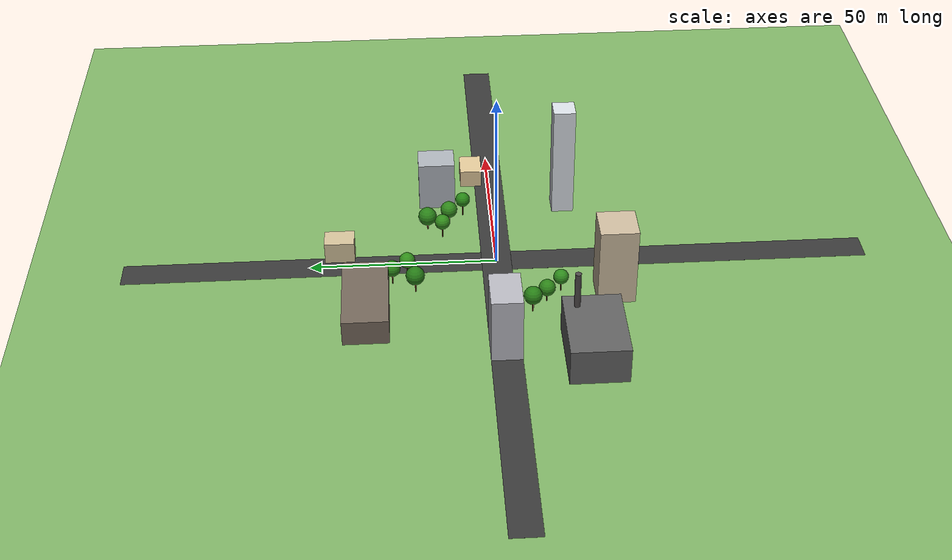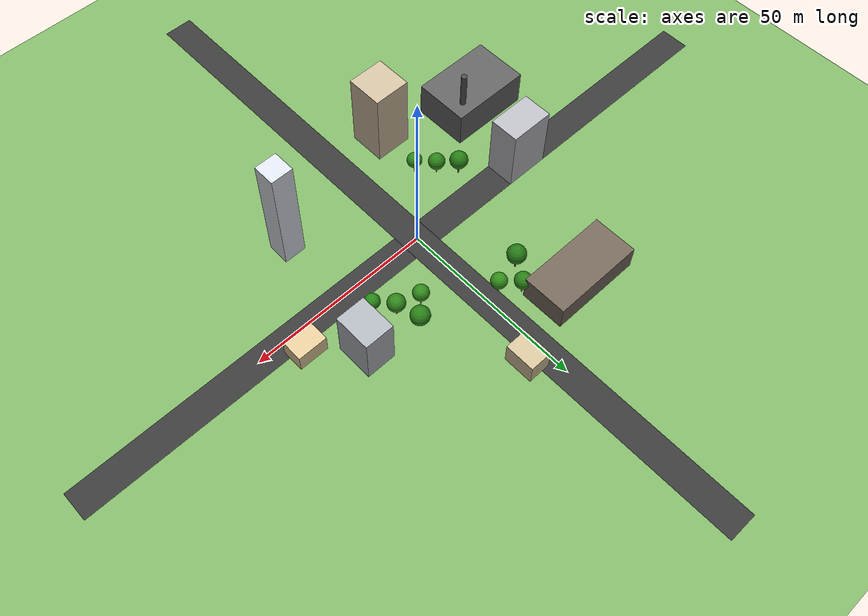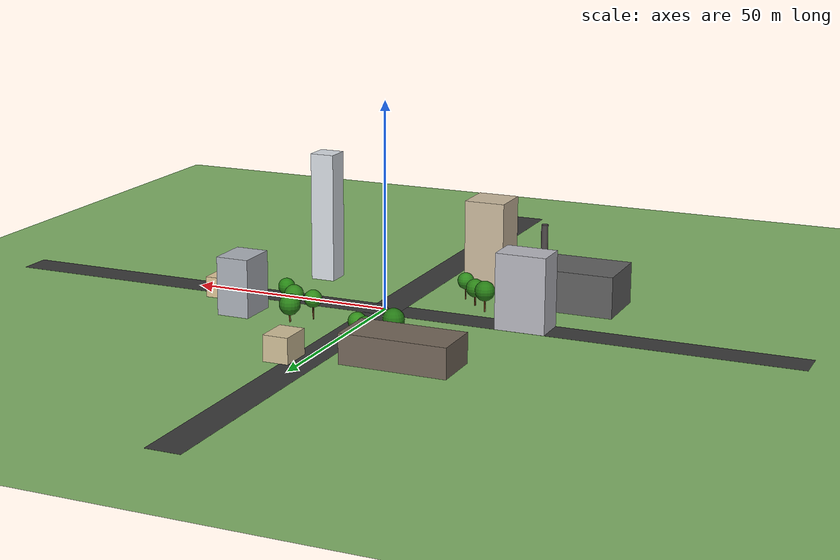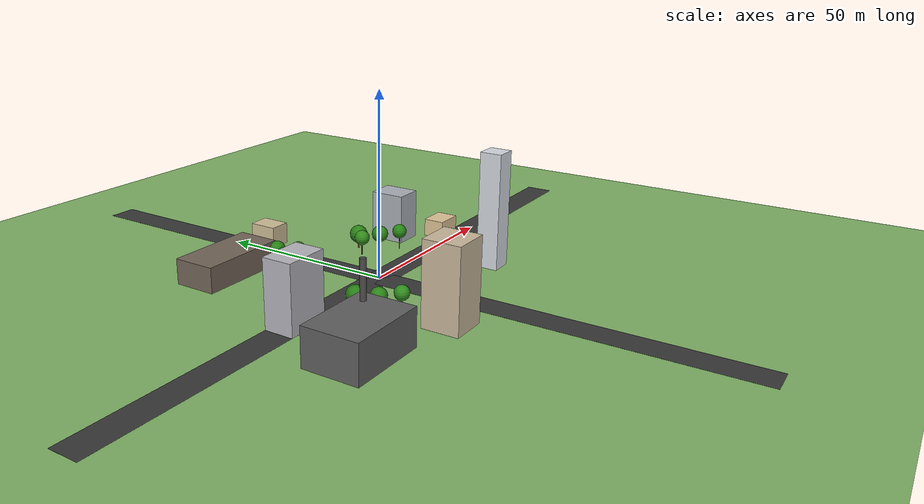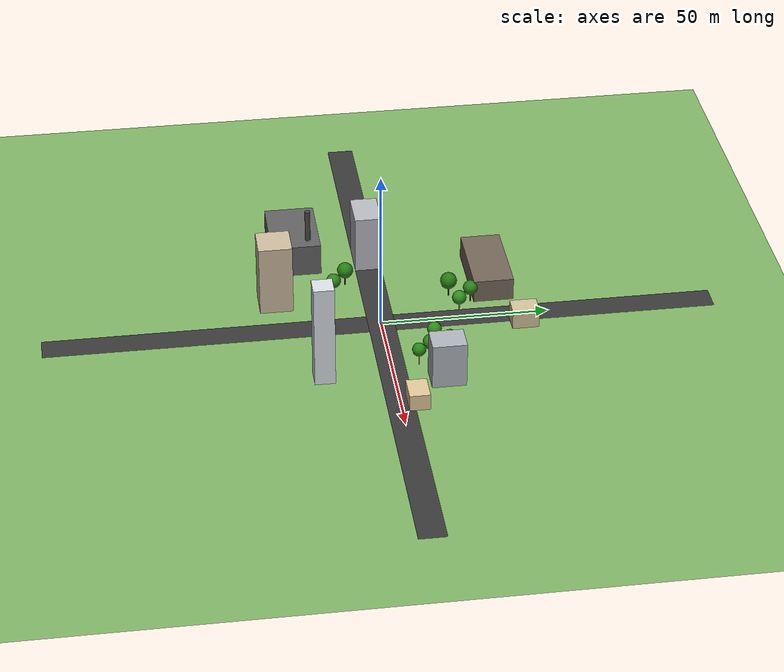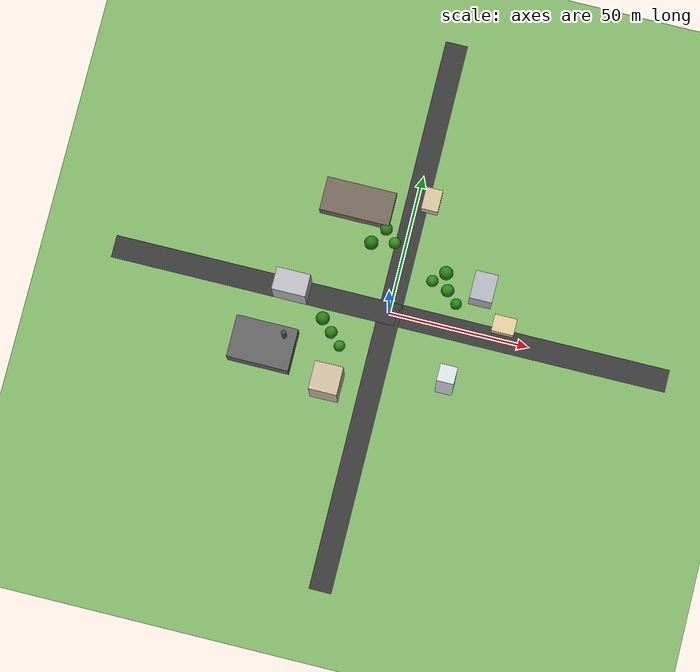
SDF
<?xml version="1.0" ?>
<sdf version="1.6">
  <world name="machinima_world">

    <physics name="4ms" type="ignored">
      <max_step_size>0.004</max_step_size>
      <real_time_factor>1.0</real_time_factor>
    </physics>

    <plugin filename="gz-sim-physics-system"
            name="gz::sim::systems::Physics"/>
    <plugin filename="gz-sim-scene-broadcaster-system"
            name="gz::sim::systems::SceneBroadcaster"/>
    <plugin filename="gz-sim-user-commands-system"
            name="gz::sim::systems::UserCommands"/>
    <plugin filename="gz-sim-sensors-system"
            name="gz::sim::systems::Sensors">
      <render_engine>ogre2</render_engine>
    </plugin>

    <light type="directional" name="sun">
      <cast_shadows>true</cast_shadows>
      <pose>0 0 10 0 0 0</pose>
      <diffuse>0.8 0.8 0.8 1</diffuse>
      <specular>0.2 0.2 0.2 1</specular>
      <attenuation>
        <range>1000</range>
        <constant>0.9</constant>
        <linear>0.01</linear>
        <quadratic>0.001</quadratic>
      </attenuation>
      <direction>-0.5 0.1 -0.9</direction>
    </light>

    <!-- Ground -->
    <model name="ground_plane">
      <static>true</static>
      <link name="link">
        <collision name="collision">
          <geometry>
            <plane><normal>0 0 1</normal><size>400 400</size></plane>
          </geometry>
        </collision>
        <visual name="visual">
          <geometry>
            <plane><normal>0 0 1</normal><size>400 400</size></plane>
          </geometry>
          <material>
            <ambient>0.5 0.7 0.4 1</ambient>
            <diffuse>0.5 0.7 0.4 1</diffuse>
          </material>
        </visual>
      </link>
    </model>

    <!-- (physics X3 removed: machinima scene is fully puppeted) -->

    <!-- Ambient fill light from opposite direction -->
    <light type="directional" name="sky_fill">
      <cast_shadows>false</cast_shadows>
      <pose>0 0 50 0 0 0</pose>
      <diffuse>0.4 0.45 0.5 1</diffuse>
      <specular>0.0 0.0 0.0 1</specular>
      <direction>0.3 -0.1 -1</direction>
    </light>

    <!-- ── Roads ─────────────────────────────────────────────────────── -->
    <model name="road_ns">
      <static>true</static>
      <pose>0 0 0.005 0 0 0</pose>
      <link name="link">
        <visual name="vis">
          <geometry><box><size>8 200 0.01</size></box></geometry>
          <material>
            <ambient>0.22 0.22 0.22 1</ambient>
            <diffuse>0.22 0.22 0.22 1</diffuse>
          </material>
        </visual>
      </link>
    </model>

    <model name="road_ew">
      <static>true</static>
      <pose>0 0 0.005 0 0 0</pose>
      <link name="link">
        <visual name="vis">
          <geometry><box><size>200 8 0.01</size></box></geometry>
          <material>
            <ambient>0.22 0.22 0.22 1</ambient>
            <diffuse>0.22 0.22 0.22 1</diffuse>
          </material>
        </visual>
      </link>
    </model>

    <!-- ── Buildings ─────────────────────────────────────────────────── -->

    <!-- Office block A  (12 × 8 × 18 m) -->
    <model name="building_office_a">
      <static>true</static>
      <pose>-35 0 9 0 0 0</pose>
      <link name="link">
        <collision name="col"><geometry><box><size>12 8 18</size></box></geometry></collision>
        <visual name="vis">
          <geometry><box><size>12 8 18</size></box></geometry>
          <material>
            <ambient>0.72 0.72 0.75 1</ambient>
            <diffuse>0.72 0.72 0.75 1</diffuse>
            <specular>0.2 0.2 0.2 1</specular>
          </material>
        </visual>
      </link>
    </model>

    <!-- Office block B  (8 × 10 × 14 m) -->
    <model name="building_office_b">
      <static>true</static>
      <pose>30 15 7 0 0 0</pose>
      <link name="link">
        <collision name="col"><geometry><box><size>8 10 14</size></box></geometry></collision>
        <visual name="vis">
          <geometry><box><size>8 10 14</size></box></geometry>
          <material>
            <ambient>0.68 0.70 0.73 1</ambient>
            <diffuse>0.68 0.70 0.73 1</diffuse>
            <specular>0.3 0.3 0.3 1</specular>
          </material>
        </visual>
      </link>
    </model>

    <!-- Tower  (6 × 6 × 32 m) — tallest landmark -->
    <model name="building_tower">
      <static>true</static>
      <pose>25 -20 16 0 0 0</pose>
      <link name="link">
        <collision name="col"><geometry><box><size>6 6 32</size></box></geometry></collision>
        <visual name="vis">
          <geometry><box><size>6 6 32</size></box></geometry>
          <material>
            <ambient>0.85 0.87 0.90 1</ambient>
            <diffuse>0.85 0.87 0.90 1</diffuse>
            <specular>0.5 0.5 0.5 1</specular>
          </material>
        </visual>
      </link>
    </model>

    <!-- Warehouse  (25 × 12 × 7 m) -->
    <model name="building_warehouse">
      <static>true</static>
      <pose>-20 35 3.5 0 0 0</pose>
      <link name="link">
        <collision name="col"><geometry><box><size>25 12 7</size></box></geometry></collision>
        <visual name="vis">
          <geometry><box><size>25 12 7</size></box></geometry>
          <material>
            <ambient>0.45 0.40 0.35 1</ambient>
            <diffuse>0.45 0.40 0.35 1</diffuse>
          </material>
        </visual>
      </link>
    </model>

    <!-- Apartment block  (10 × 10 × 22 m) -->
    <model name="building_apartment">
      <static>true</static>
      <pose>-15 -30 11 0 0 0</pose>
      <link name="link">
        <collision name="col"><geometry><box><size>10 10 22</size></box></geometry></collision>
        <visual name="vis">
          <geometry><box><size>10 10 22</size></box></geometry>
          <material>
            <ambient>0.80 0.73 0.62 1</ambient>
            <diffuse>0.80 0.73 0.62 1</diffuse>
          </material>
        </visual>
      </link>
    </model>

    <!-- Small shop A  (8 × 6 × 5 m) -->
    <model name="building_shop_a">
      <static>true</static>
      <pose>40 5 2.5 0 0 0</pose>
      <link name="link">
        <collision name="col"><geometry><box><size>8 6 5</size></box></geometry></collision>
        <visual name="vis">
          <geometry><box><size>8 6 5</size></box></geometry>
          <material>
            <ambient>0.88 0.78 0.60 1</ambient>
            <diffuse>0.88 0.78 0.60 1</diffuse>
          </material>
        </visual>
      </link>
    </model>

    <!-- Small shop B  (6 × 8 × 6 m) -->
    <model name="building_shop_b">
      <static>true</static>
      <pose>5 42 3 0 0 0</pose>
      <link name="link">
        <collision name="col"><geometry><box><size>6 8 6</size></box></geometry></collision>
        <visual name="vis">
          <geometry><box><size>6 8 6</size></box></geometry>
          <material>
            <ambient>0.82 0.75 0.60 1</ambient>
            <diffuse>0.82 0.75 0.60 1</diffuse>
          </material>
        </visual>
      </link>
    </model>

    <!-- Factory  (22 × 15 × 10 m) -->
    <model name="building_factory">
      <static>true</static>
      <pose>-40 -22 5 0 0 0</pose>
      <link name="link">
        <collision name="col"><geometry><box><size>22 15 10</size></box></geometry></collision>
        <visual name="vis">
          <geometry><box><size>22 15 10</size></box></geometry>
          <material>
            <ambient>0.38 0.38 0.38 1</ambient>
            <diffuse>0.38 0.38 0.38 1</diffuse>
          </material>
        </visual>
      </link>
    </model>

    <!-- Factory chimney -->
    <model name="building_chimney">
      <static>true</static>
      <pose>-33 -18 10 0 0 0</pose>
      <link name="link">
        <collision name="col"><geometry><cylinder><radius>0.8</radius><length>20</length></cylinder></geometry></collision>
        <visual name="vis">
          <geometry><cylinder><radius>0.8</radius><length>20</length></cylinder></geometry>
          <material>
            <ambient>0.30 0.28 0.28 1</ambient>
            <diffuse>0.30 0.28 0.28 1</diffuse>
          </material>
        </visual>
      </link>
    </model>

    <!-- Cluster 1 — north-east -->
    <model name="tree_1"><static>true</static><pose>18 12 0 0 0 0</pose><link name="link">
      <visual name="trunk"><pose>0 0 1.5 0 0 0</pose><geometry><cylinder><radius>0.18</radius><length>3</length></cylinder></geometry><material><ambient>0.35 0.20 0.05 1</ambient><diffuse>0.35 0.20 0.05 1</diffuse></material></visual>
      <visual name="crown"><pose>0 0 4.8 0 0 0</pose><geometry><sphere><radius>2.3</radius></sphere></geometry><material><ambient>0.13 0.48 0.10 1</ambient><diffuse>0.18 0.52 0.10 1</diffuse></material></visual>
      <collision name="col"><pose>0 0 1.5 0 0 0</pose><geometry><cylinder><radius>0.18</radius><length>3</length></cylinder></geometry></collision>
    </link></model>

    <model name="tree_2"><static>true</static><pose>22 8 0 0 0 0</pose><link name="link">
      <visual name="trunk"><pose>0 0 1.8 0 0 0</pose><geometry><cylinder><radius>0.15</radius><length>3.6</length></cylinder></geometry><material><ambient>0.35 0.20 0.05 1</ambient><diffuse>0.35 0.20 0.05 1</diffuse></material></visual>
      <visual name="crown"><pose>0 0 5.2 0 0 0</pose><geometry><sphere><radius>2.0</radius></sphere></geometry><material><ambient>0.15 0.52 0.08 1</ambient><diffuse>0.15 0.52 0.08 1</diffuse></material></visual>
      <collision name="col"><pose>0 0 1.8 0 0 0</pose><geometry><cylinder><radius>0.15</radius><length>3.6</length></cylinder></geometry></collision>
    </link></model>

    <model name="tree_3"><static>true</static><pose>16 18 0 0 0 0</pose><link name="link">
      <visual name="trunk"><pose>0 0 1.3 0 0 0</pose><geometry><cylinder><radius>0.20</radius><length>2.6</length></cylinder></geometry><material><ambient>0.35 0.20 0.05 1</ambient><diffuse>0.35 0.20 0.05 1</diffuse></material></visual>
      <visual name="crown"><pose>0 0 4.2 0 0 0</pose><geometry><sphere><radius>2.5</radius></sphere></geometry><material><ambient>0.12 0.45 0.09 1</ambient><diffuse>0.16 0.50 0.09 1</diffuse></material></visual>
      <collision name="col"><pose>0 0 1.3 0 0 0</pose><geometry><cylinder><radius>0.20</radius><length>2.6</length></cylinder></geometry></collision>
    </link></model>

    <model name="tree_4"><static>true</static><pose>12 14 0 0 0 0</pose><link name="link">
      <visual name="trunk"><pose>0 0 1.6 0 0 0</pose><geometry><cylinder><radius>0.16</radius><length>3.2</length></cylinder></geometry><material><ambient>0.35 0.20 0.05 1</ambient><diffuse>0.35 0.20 0.05 1</diffuse></material></visual>
      <visual name="crown"><pose>0 0 5.0 0 0 0</pose><geometry><sphere><radius>2.1</radius></sphere></geometry><material><ambient>0.14 0.50 0.10 1</ambient><diffuse>0.19 0.54 0.10 1</diffuse></material></visual>
      <collision name="col"><pose>0 0 1.6 0 0 0</pose><geometry><cylinder><radius>0.16</radius><length>3.2</length></cylinder></geometry></collision>
    </link></model>

    <!-- Cluster 2 — south-west -->
    <model name="tree_5"><static>true</static><pose>-18 -12 0 0 0 0</pose><link name="link">
      <visual name="trunk"><pose>0 0 1.4 0 0 0</pose><geometry><cylinder><radius>0.17</radius><length>2.8</length></cylinder></geometry><material><ambient>0.35 0.20 0.05 1</ambient><diffuse>0.35 0.20 0.05 1</diffuse></material></visual>
      <visual name="crown"><pose>0 0 4.3 0 0 0</pose><geometry><sphere><radius>2.2</radius></sphere></geometry><material><ambient>0.13 0.47 0.09 1</ambient><diffuse>0.17 0.51 0.09 1</diffuse></material></visual>
      <collision name="col"><pose>0 0 1.4 0 0 0</pose><geometry><cylinder><radius>0.17</radius><length>2.8</length></cylinder></geometry></collision>
    </link></model>

    <model name="tree_6"><static>true</static><pose>-22 -8 0 0 0 0</pose><link name="link">
      <visual name="trunk"><pose>0 0 1.7 0 0 0</pose><geometry><cylinder><radius>0.19</radius><length>3.4</length></cylinder></geometry><material><ambient>0.35 0.20 0.05 1</ambient><diffuse>0.35 0.20 0.05 1</diffuse></material></visual>
      <visual name="crown"><pose>0 0 5.1 0 0 0</pose><geometry><sphere><radius>2.4</radius></sphere></geometry><material><ambient>0.11 0.44 0.08 1</ambient><diffuse>0.15 0.49 0.08 1</diffuse></material></visual>
      <collision name="col"><pose>0 0 1.7 0 0 0</pose><geometry><cylinder><radius>0.19</radius><length>3.4</length></cylinder></geometry></collision>
    </link></model>

    <model name="tree_7"><static>true</static><pose>-14 -16 0 0 0 0</pose><link name="link">
      <visual name="trunk"><pose>0 0 1.5 0 0 0</pose><geometry><cylinder><radius>0.15</radius><length>3.0</length></cylinder></geometry><material><ambient>0.35 0.20 0.05 1</ambient><diffuse>0.35 0.20 0.05 1</diffuse></material></visual>
      <visual name="crown"><pose>0 0 4.6 0 0 0</pose><geometry><sphere><radius>2.0</radius></sphere></geometry><material><ambient>0.14 0.50 0.11 1</ambient><diffuse>0.18 0.54 0.11 1</diffuse></material></visual>
      <collision name="col"><pose>0 0 1.5 0 0 0</pose><geometry><cylinder><radius>0.15</radius><length>3.0</length></cylinder></geometry></collision>
    </link></model>

    <!-- Cluster 3 — near warehouse, north -->
    <model name="tree_8"><static>true</static><pose>-8 28 0 0 0 0</pose><link name="link">
      <visual name="trunk"><pose>0 0 1.6 0 0 0</pose><geometry><cylinder><radius>0.18</radius><length>3.2</length></cylinder></geometry><material><ambient>0.35 0.20 0.05 1</ambient><diffuse>0.35 0.20 0.05 1</diffuse></material></visual>
      <visual name="crown"><pose>0 0 4.9 0 0 0</pose><geometry><sphere><radius>2.2</radius></sphere></geometry><material><ambient>0.12 0.46 0.09 1</ambient><diffuse>0.16 0.50 0.09 1</diffuse></material></visual>
      <collision name="col"><pose>0 0 1.6 0 0 0</pose><geometry><cylinder><radius>0.18</radius><length>3.2</length></cylinder></geometry></collision>
    </link></model>

    <model name="tree_9"><static>true</static><pose>-4 24 0 0 0 0</pose><link name="link">
      <visual name="trunk"><pose>0 0 1.4 0 0 0</pose><geometry><cylinder><radius>0.16</radius><length>2.8</length></cylinder></geometry><material><ambient>0.35 0.20 0.05 1</ambient><diffuse>0.35 0.20 0.05 1</diffuse></material></visual>
      <visual name="crown"><pose>0 0 4.4 0 0 0</pose><geometry><sphere><radius>2.1</radius></sphere></geometry><material><ambient>0.15 0.51 0.10 1</ambient><diffuse>0.19 0.55 0.10 1</diffuse></material></visual>
      <collision name="col"><pose>0 0 1.4 0 0 0</pose><geometry><cylinder><radius>0.16</radius><length>2.8</length></cylinder></geometry></collision>
    </link></model>

    <model name="tree_10"><static>true</static><pose>-12 22 0 0 0 0</pose><link name="link">
      <visual name="trunk"><pose>0 0 1.8 0 0 0</pose><geometry><cylinder><radius>0.20</radius><length>3.6</length></cylinder></geometry><material><ambient>0.35 0.20 0.05 1</ambient><diffuse>0.35 0.20 0.05 1</diffuse></material></visual>
      <visual name="crown"><pose>0 0 5.3 0 0 0</pose><geometry><sphere><radius>2.5</radius></sphere></geometry><material><ambient>0.11 0.43 0.08 1</ambient><diffuse>0.14 0.47 0.08 1</diffuse></material></visual>
      <collision name="col"><pose>0 0 1.8 0 0 0</pose><geometry><cylinder><radius>0.20</radius><length>3.6</length></cylinder></geometry></collision>
    </link></model>

    <model name="cine_cam">
      <pose>0 -30 12 0 0 0</pose>
      <link name="link">
        <gravity>false</gravity>
        <inertial><mass>0.1</mass>
          <inertia><ixx>0.001</ixx><iyy>0.001</iyy><izz>0.001</izz>
                   <ixy>0</ixy><ixz>0</ixz><iyz>0</iyz></inertia></inertial>
        <sensor name="cam" type="camera">
          <always_on>1</always_on>
          <update_rate>30</update_rate>
          <topic>cine_cam/image</topic>
          <camera>
            <horizontal_fov>1.0472</horizontal_fov>
            <image><width>1280</width><height>720</height></image>
            <clip><near>0.1</near><far>3000</far></clip>
          </camera>
        </sensor>
      </link>
    </model>

  </world>
</sdf>
